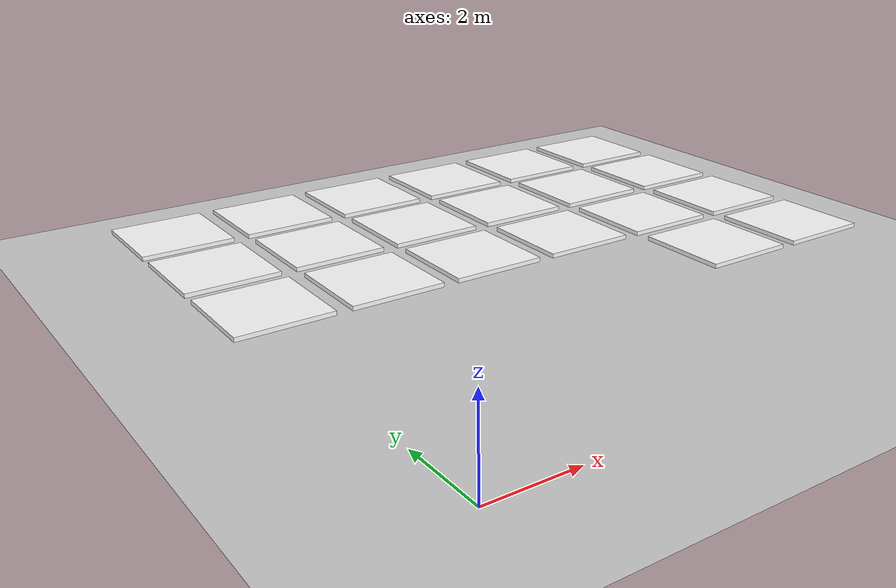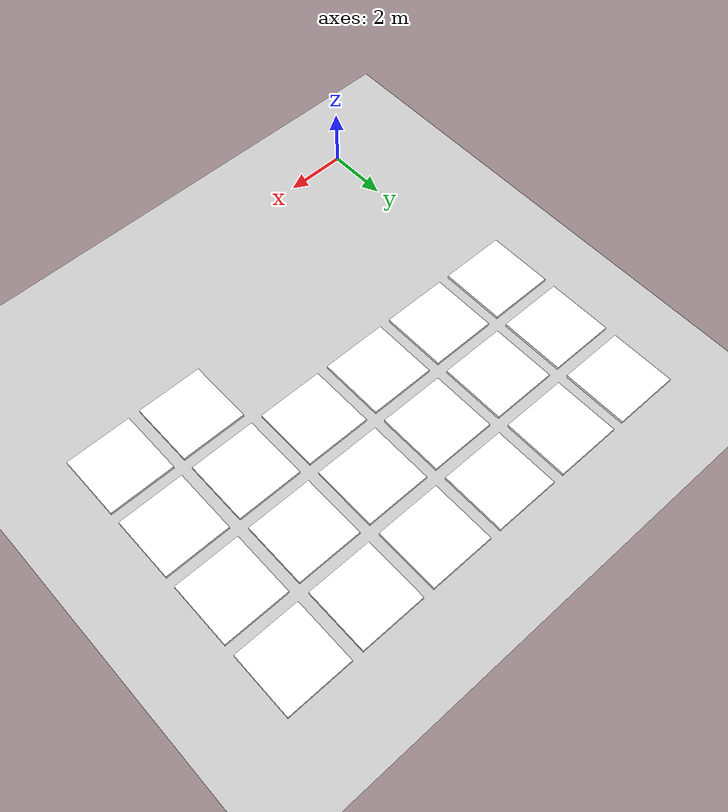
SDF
<sdf version="1.7">
 <world name="default">
  <model name="ground_plane">
   <static>1</static>
   <link name="link">
    <collision name="collision">
     <geometry><plane><normal>0 0 1</normal><size>100 100</size></plane></geometry>
     <surface>
      <contact><collide_bitmask>65535</collide_bitmask></contact>
      <friction><ode><mu>100</mu><mu2>50</mu2></ode></friction>
     </surface>
    </collision>
    <visual name="visual">
     <cast_shadows>0</cast_shadows>
     <geometry><plane><normal>0 0 1</normal><size>100 100</size></plane></geometry>
     <material>
      <script><uri>file://media/materials/scripts/gazebo.material</uri><name>Gazebo/Grey</name></script>
     </material>
    </visual>
   </link>
  </model>
  <model name="top_view_fuel_cluster_7_9">
   <link name="link">
    <inertial>
     <mass>0.489843</mass>
     <inertia>
      <ixx>0.0410659</ixx>
      <ixy>0</ixy>
      <ixz>0</ixz>
      <iyy>0.0410658</iyy>
      <iyz>0</iyz>
      <izz>0.0816405</izz>
     </inertia>
    </inertial>
    <visual name="visual">
     <geometry><box><size>2.14 2.14 0.099999</size></box></geometry>
     <material>
      <script>
       <uri>model://top_view_fuel_cluster/materials/scripts</uri>
       <uri>model://top_view_fuel_cluster/materials/textures</uri>
       <name>snf/Diffuse</name>
      </script>
      <shader type="pixel"><normal_map>__default__</normal_map></shader>
      <ambient>0.3 0.3 0.3 1</ambient>
      <diffuse>1 1 1 1</diffuse>
      <specular>0.01 0.01 0.01 1</specular>
      <emissive>0 0 0 1</emissive>
     </material>
    </visual>
    <collision name="collision">
     <geometry><box><size>2.14 2.14 0.100001</size></box></geometry>
     <surface>
      <friction>
       <ode><mu>1</mu><mu2>1</mu2><fdir1>0 0 0</fdir1><slip1>0</slip1><slip2>0</slip2></ode>
       <torsional>
        <coefficient>1</coefficient>
        <patch_radius>0</patch_radius>
        <surface_radius>0</surface_radius>
        <use_patch_radius>1</use_patch_radius>
        <ode><slip>0</slip></ode>
       </torsional>
      </friction>
      <bounce><restitution_coefficient>0</restitution_coefficient><threshold>1e+06</threshold></bounce>
      <contact>
       <collide_without_contact>0</collide_without_contact>
       <collide_without_contact_bitmask>1</collide_without_contact_bitmask>
       <collide_bitmask>1</collide_bitmask>
       <ode>
        <soft_cfm>0</soft_cfm>
        <soft_erp>0.2</soft_erp>
        <kp>1e+13</kp>
        <kd>1</kd>
        <max_vel>0.01</max_vel>
        <min_depth>0</min_depth>
       </ode>
       <bullet>
        <split_impulse>1</split_impulse>
        <split_impulse_penetration_threshold>-0.01</split_impulse_penetration_threshold>
        <soft_cfm>0</soft_cfm>
        <soft_erp>0.2</soft_erp>
        <kp>1e+13</kp>
        <kd>1</kd>
       </bullet>
      </contact>
     </surface>
    </collision>
   </link>
   <static>0</static>
   <pose>10 5 0.5 0 -0 0</pose>
  </model>
  <model name="top_view_fuel_cluster_7_10">
   <link name="link">
    <inertial>
     <mass>0.489843</mass>
     <inertia>
      <ixx>0.0410659</ixx>
      <ixy>0</ixy>
      <ixz>0</ixz>
      <iyy>0.0410658</iyy>
      <iyz>0</iyz>
      <izz>0.0816405</izz>
     </inertia>
    </inertial>
    <visual name="visual">
     <geometry><box><size>2.14 2.14 0.099999</size></box></geometry>
     <material>
      <script>
       <uri>model://top_view_fuel_cluster/materials/scripts</uri>
       <uri>model://top_view_fuel_cluster/materials/textures</uri>
       <name>snf/Diffuse</name>
      </script>
      <shader type="pixel"><normal_map>__default__</normal_map></shader>
      <ambient>0.3 0.3 0.3 1</ambient>
      <diffuse>1 1 1 1</diffuse>
      <specular>0.01 0.01 0.01 1</specular>
      <emissive>0 0 0 1</emissive>
     </material>
    </visual>
    <collision name="collision">
     <geometry><box><size>2.14 2.14 0.100001</size></box></geometry>
     <surface>
      <friction>
       <ode><mu>1</mu><mu2>1</mu2><fdir1>0 0 0</fdir1><slip1>0</slip1><slip2>0</slip2></ode>
       <torsional>
        <coefficient>1</coefficient>
        <patch_radius>0</patch_radius>
        <surface_radius>0</surface_radius>
        <use_patch_radius>1</use_patch_radius>
        <ode><slip>0</slip></ode>
       </torsional>
      </friction>
      <bounce><restitution_coefficient>0</restitution_coefficient><threshold>1e+06</threshold></bounce>
      <contact>
       <collide_without_contact>0</collide_without_contact>
       <collide_without_contact_bitmask>1</collide_without_contact_bitmask>
       <collide_bitmask>1</collide_bitmask>
       <ode>
        <soft_cfm>0</soft_cfm>
        <soft_erp>0.2</soft_erp>
        <kp>1e+13</kp>
        <kd>1</kd>
        <max_vel>0.01</max_vel>
        <min_depth>0</min_depth>
       </ode>
       <bullet>
        <split_impulse>1</split_impulse>
        <split_impulse_penetration_threshold>-0.01</split_impulse_penetration_threshold>
        <soft_cfm>0</soft_cfm>
        <soft_erp>0.2</soft_erp>
        <kp>1e+13</kp>
        <kd>1</kd>
       </bullet>
      </contact>
     </surface>
    </collision>
   </link>
   <static>0</static>
   <pose>12.5 5 0.5 0 -0 0</pose>
  </model>
  <model name="top_view_fuel_cluster_8_0">
   <link name="link">
    <inertial>
     <mass>0.489843</mass>
     <inertia>
      <ixx>0.0410659</ixx>
      <ixy>0</ixy>
      <ixz>0</ixz>
      <iyy>0.0410658</iyy>
      <iyz>0</iyz>
      <izz>0.0816405</izz>
     </inertia>
    </inertial>
    <visual name="visual">
     <geometry><box><size>2.14 2.14 0.099999</size></box></geometry>
     <material>
      <script>
       <uri>model://top_view_fuel_cluster/materials/scripts</uri>
       <uri>model://top_view_fuel_cluster/materials/textures</uri>
       <name>snf/Diffuse</name>
      </script>
      <shader type="pixel"><normal_map>__default__</normal_map></shader>
      <ambient>0.3 0.3 0.3 1</ambient>
      <diffuse>1 1 1 1</diffuse>
      <specular>0.01 0.01 0.01 1</specular>
      <emissive>0 0 0 1</emissive>
     </material>
    </visual>
    <collision name="collision">
     <geometry><box><size>2.14 2.14 0.100001</size></box></geometry>
     <surface>
      <friction>
       <ode><mu>1</mu><mu2>1</mu2><fdir1>0 0 0</fdir1><slip1>0</slip1><slip2>0</slip2></ode>
       <torsional>
        <coefficient>1</coefficient>
        <patch_radius>0</patch_radius>
        <surface_radius>0</surface_radius>
        <use_patch_radius>1</use_patch_radius>
        <ode><slip>0</slip></ode>
       </torsional>
      </friction>
      <bounce><restitution_coefficient>0</restitution_coefficient><threshold>1e+06</threshold></bounce>
      <contact>
       <collide_without_contact>0</collide_without_contact>
       <collide_without_contact_bitmask>1</collide_without_contact_bitmask>
       <collide_bitmask>1</collide_bitmask>
       <ode>
        <soft_cfm>0</soft_cfm>
        <soft_erp>0.2</soft_erp>
        <kp>1e+13</kp>
        <kd>1</kd>
        <max_vel>0.01</max_vel>
        <min_depth>0</min_depth>
       </ode>
       <bullet>
        <split_impulse>1</split_impulse>
        <split_impulse_penetration_threshold>-0.01</split_impulse_penetration_threshold>
        <soft_cfm>0</soft_cfm>
        <soft_erp>0.2</soft_erp>
        <kp>1e+13</kp>
        <kd>1</kd>
       </bullet>
      </contact>
     </surface>
    </collision>
   </link>
   <static>0</static>
   <pose>0 7.5 0.5 0 0 0</pose>
  </model>
  <model name="top_view_fuel_cluster_8_6">
   <link name="link">
    <inertial>
     <mass>0.489843</mass>
     <inertia>
      <ixx>0.0410659</ixx>
      <ixy>0</ixy>
      <ixz>0</ixz>
      <iyy>0.0410658</iyy>
      <iyz>0</iyz>
      <izz>0.0816405</izz>
     </inertia>
    </inertial>
    <visual name="visual">
     <geometry><box><size>2.14 2.14 0.099999</size></box></geometry>
     <material>
      <script>
       <uri>model://top_view_fuel_cluster/materials/scripts</uri>
       <uri>model://top_view_fuel_cluster/materials/textures</uri>
       <name>snf/Diffuse</name>
      </script>
      <shader type="pixel"><normal_map>__default__</normal_map></shader>
      <ambient>0.3 0.3 0.3 1</ambient>
      <diffuse>1 1 1 1</diffuse>
      <specular>0.01 0.01 0.01 1</specular>
      <emissive>0 0 0 1</emissive>
     </material>
    </visual>
    <collision name="collision">
     <geometry><box><size>2.14 2.14 0.100001</size></box></geometry>
     <surface>
      <friction>
       <ode><mu>1</mu><mu2>1</mu2><fdir1>0 0 0</fdir1><slip1>0</slip1><slip2>0</slip2></ode>
       <torsional>
        <coefficient>1</coefficient>
        <patch_radius>0</patch_radius>
        <surface_radius>0</surface_radius>
        <use_patch_radius>1</use_patch_radius>
        <ode><slip>0</slip></ode>
       </torsional>
      </friction>
      <bounce><restitution_coefficient>0</restitution_coefficient><threshold>1e+06</threshold></bounce>
      <contact>
       <collide_without_contact>0</collide_without_contact>
       <collide_without_contact_bitmask>1</collide_without_contact_bitmask>
       <collide_bitmask>1</collide_bitmask>
       <ode>
        <soft_cfm>0</soft_cfm>
        <soft_erp>0.2</soft_erp>
        <kp>1e+13</kp>
        <kd>1</kd>
        <max_vel>0.01</max_vel>
        <min_depth>0</min_depth>
       </ode>
       <bullet>
        <split_impulse>1</split_impulse>
        <split_impulse_penetration_threshold>-0.01</split_impulse_penetration_threshold>
        <soft_cfm>0</soft_cfm>
        <soft_erp>0.2</soft_erp>
        <kp>1e+13</kp>
        <kd>1</kd>
       </bullet>
      </contact>
     </surface>
    </collision>
   </link>
   <static>0</static>
   <pose>2.5 7.5 0.5 0 -0 0</pose>
  </model>
  <model name="top_view_fuel_cluster_8_7">
   <link name="link">
    <inertial>
     <mass>0.489843</mass>
     <inertia>
      <ixx>0.0410659</ixx>
      <ixy>0</ixy>
      <ixz>0</ixz>
      <iyy>0.0410658</iyy>
      <iyz>0</iyz>
      <izz>0.0816405</izz>
     </inertia>
    </inertial>
    <visual name="visual">
     <geometry><box><size>2.14 2.14 0.099999</size></box></geometry>
     <material>
      <script>
       <uri>model://top_view_fuel_cluster/materials/scripts</uri>
       <uri>model://top_view_fuel_cluster/materials/textures</uri>
       <name>snf/Diffuse</name>
      </script>
      <shader type="pixel"><normal_map>__default__</normal_map></shader>
      <ambient>0.3 0.3 0.3 1</ambient>
      <diffuse>1 1 1 1</diffuse>
      <specular>0.01 0.01 0.01 1</specular>
      <emissive>0 0 0 1</emissive>
     </material>
    </visual>
    <collision name="collision">
     <geometry><box><size>2.14 2.14 0.100001</size></box></geometry>
     <surface>
      <friction>
       <ode><mu>1</mu><mu2>1</mu2><fdir1>0 0 0</fdir1><slip1>0</slip1><slip2>0</slip2></ode>
       <torsional>
        <coefficient>1</coefficient>
        <patch_radius>0</patch_radius>
        <surface_radius>0</surface_radius>
        <use_patch_radius>1</use_patch_radius>
        <ode><slip>0</slip></ode>
       </torsional>
      </friction>
      <bounce><restitution_coefficient>0</restitution_coefficient><threshold>1e+06</threshold></bounce>
      <contact>
       <collide_without_contact>0</collide_without_contact>
       <collide_without_contact_bitmask>1</collide_without_contact_bitmask>
       <collide_bitmask>1</collide_bitmask>
       <ode>
        <soft_cfm>0</soft_cfm>
        <soft_erp>0.2</soft_erp>
        <kp>1e+13</kp>
        <kd>1</kd>
        <max_vel>0.01</max_vel>
        <min_depth>0</min_depth>
       </ode>
       <bullet>
        <split_impulse>1</split_impulse>
        <split_impulse_penetration_threshold>-0.01</split_impulse_penetration_threshold>
        <soft_cfm>0</soft_cfm>
        <soft_erp>0.2</soft_erp>
        <kp>1e+13</kp>
        <kd>1</kd>
       </bullet>
      </contact>
     </surface>
    </collision>
   </link>
   <static>0</static>
   <pose>5 7.5 0.5 0 -0 0</pose>
  </model>
  <model name="top_view_fuel_cluster_8_8">
   <link name="link">
    <inertial>
     <mass>0.489843</mass>
     <inertia>
      <ixx>0.0410659</ixx>
      <ixy>0</ixy>
      <ixz>0</ixz>
      <iyy>0.0410658</iyy>
      <iyz>0</iyz>
      <izz>0.0816405</izz>
     </inertia>
    </inertial>
    <visual name="visual">
     <geometry><box><size>2.14 2.14 0.099999</size></box></geometry>
     <material>
      <script>
       <uri>model://top_view_fuel_cluster/materials/scripts</uri>
       <uri>model://top_view_fuel_cluster/materials/textures</uri>
       <name>snf/Diffuse</name>
      </script>
      <shader type="pixel"><normal_map>__default__</normal_map></shader>
      <ambient>0.3 0.3 0.3 1</ambient>
      <diffuse>1 1 1 1</diffuse>
      <specular>0.01 0.01 0.01 1</specular>
      <emissive>0 0 0 1</emissive>
     </material>
    </visual>
    <collision name="collision">
     <geometry><box><size>2.14 2.14 0.100001</size></box></geometry>
     <surface>
      <friction>
       <ode><mu>1</mu><mu2>1</mu2><fdir1>0 0 0</fdir1><slip1>0</slip1><slip2>0</slip2></ode>
       <torsional>
        <coefficient>1</coefficient>
        <patch_radius>0</patch_radius>
        <surface_radius>0</surface_radius>
        <use_patch_radius>1</use_patch_radius>
        <ode><slip>0</slip></ode>
       </torsional>
      </friction>
      <bounce><restitution_coefficient>0</restitution_coefficient><threshold>1e+06</threshold></bounce>
      <contact>
       <collide_without_contact>0</collide_without_contact>
       <collide_without_contact_bitmask>1</collide_without_contact_bitmask>
       <collide_bitmask>1</collide_bitmask>
       <ode>
        <soft_cfm>0</soft_cfm>
        <soft_erp>0.2</soft_erp>
        <kp>1e+13</kp>
        <kd>1</kd>
        <max_vel>0.01</max_vel>
        <min_depth>0</min_depth>
       </ode>
       <bullet>
        <split_impulse>1</split_impulse>
        <split_impulse_penetration_threshold>-0.01</split_impulse_penetration_threshold>
        <soft_cfm>0</soft_cfm>
        <soft_erp>0.2</soft_erp>
        <kp>1e+13</kp>
        <kd>1</kd>
       </bullet>
      </contact>
     </surface>
    </collision>
   </link>
   <static>0</static>
   <pose>7.5 7.5 0.5 0 -0 0</pose>
  </model>
  <model name="top_view_fuel_cluster_8_9">
   <link name="link">
    <inertial>
     <mass>0.489843</mass>
     <inertia>
      <ixx>0.0410659</ixx>
      <ixy>0</ixy>
      <ixz>0</ixz>
      <iyy>0.0410658</iyy>
      <iyz>0</iyz>
      <izz>0.0816405</izz>
     </inertia>
    </inertial>
    <visual name="visual">
     <geometry><box><size>2.14 2.14 0.099999</size></box></geometry>
     <material>
      <script>
       <uri>model://top_view_fuel_cluster/materials/scripts</uri>
       <uri>model://top_view_fuel_cluster/materials/textures</uri>
       <name>snf/Diffuse</name>
      </script>
      <shader type="pixel"><normal_map>__default__</normal_map></shader>
      <ambient>0.3 0.3 0.3 1</ambient>
      <diffuse>1 1 1 1</diffuse>
      <specular>0.01 0.01 0.01 1</specular>
      <emissive>0 0 0 1</emissive>
     </material>
    </visual>
    <collision name="collision">
     <geometry><box><size>2.14 2.14 0.100001</size></box></geometry>
     <surface>
      <friction>
       <ode><mu>1</mu><mu2>1</mu2><fdir1>0 0 0</fdir1><slip1>0</slip1><slip2>0</slip2></ode>
       <torsional>
        <coefficient>1</coefficient>
        <patch_radius>0</patch_radius>
        <surface_radius>0</surface_radius>
        <use_patch_radius>1</use_patch_radius>
        <ode><slip>0</slip></ode>
       </torsional>
      </friction>
      <bounce><restitution_coefficient>0</restitution_coefficient><threshold>1e+06</threshold></bounce>
      <contact>
       <collide_without_contact>0</collide_without_contact>
       <collide_without_contact_bitmask>1</collide_without_contact_bitmask>
       <collide_bitmask>1</collide_bitmask>
       <ode>
        <soft_cfm>0</soft_cfm>
        <soft_erp>0.2</soft_erp>
        <kp>1e+13</kp>
        <kd>1</kd>
        <max_vel>0.01</max_vel>
        <min_depth>0</min_depth>
       </ode>
       <bullet>
        <split_impulse>1</split_impulse>
        <split_impulse_penetration_threshold>-0.01</split_impulse_penetration_threshold>
        <soft_cfm>0</soft_cfm>
        <soft_erp>0.2</soft_erp>
        <kp>1e+13</kp>
        <kd>1</kd>
       </bullet>
      </contact>
     </surface>
    </collision>
   </link>
   <static>0</static>
   <pose>10 7.5 0.5 0 -0 0</pose>
  </model>
  <model name="top_view_fuel_cluster_8_10">
   <link name="link">
    <inertial>
     <mass>0.489843</mass>
     <inertia>
      <ixx>0.0410659</ixx>
      <ixy>0</ixy>
      <ixz>0</ixz>
      <iyy>0.0410658</iyy>
      <iyz>0</iyz>
      <izz>0.0816405</izz>
     </inertia>
    </inertial>
    <visual name="visual">
     <geometry><box><size>2.14 2.14 0.099999</size></box></geometry>
     <material>
      <script>
       <uri>model://top_view_fuel_cluster/materials/scripts</uri>
       <uri>model://top_view_fuel_cluster/materials/textures</uri>
       <name>snf/Diffuse</name>
      </script>
      <shader type="pixel"><normal_map>__default__</normal_map></shader>
      <ambient>0.3 0.3 0.3 1</ambient>
      <diffuse>1 1 1 1</diffuse>
      <specular>0.01 0.01 0.01 1</specular>
      <emissive>0 0 0 1</emissive>
     </material>
    </visual>
    <collision name="collision">
     <geometry><box><size>2.14 2.14 0.100001</size></box></geometry>
     <surface>
      <friction>
       <ode><mu>1</mu><mu2>1</mu2><fdir1>0 0 0</fdir1><slip1>0</slip1><slip2>0</slip2></ode>
       <torsional>
        <coefficient>1</coefficient>
        <patch_radius>0</patch_radius>
        <surface_radius>0</surface_radius>
        <use_patch_radius>1</use_patch_radius>
        <ode><slip>0</slip></ode>
       </torsional>
      </friction>
      <bounce><restitution_coefficient>0</restitution_coefficient><threshold>1e+06</threshold></bounce>
      <contact>
       <collide_without_contact>0</collide_without_contact>
       <collide_without_contact_bitmask>1</collide_without_contact_bitmask>
       <collide_bitmask>1</collide_bitmask>
       <ode>
        <soft_cfm>0</soft_cfm>
        <soft_erp>0.2</soft_erp>
        <kp>1e+13</kp>
        <kd>1</kd>
        <max_vel>0.01</max_vel>
        <min_depth>0</min_depth>
       </ode>
       <bullet>
        <split_impulse>1</split_impulse>
        <split_impulse_penetration_threshold>-0.01</split_impulse_penetration_threshold>
        <soft_cfm>0</soft_cfm>
        <soft_erp>0.2</soft_erp>
        <kp>1e+13</kp>
        <kd>1</kd>
       </bullet>
      </contact>
     </surface>
    </collision>
   </link>
   <static>0</static>
   <pose>12.5 7.5 0.5 0 -0 0</pose>
  </model>
  <model name="top_view_fuel_cluster_9_0">
   <link name="link">
    <inertial>
     <mass>0.489843</mass>
     <inertia>
      <ixx>0.0410659</ixx>
      <ixy>0</ixy>
      <ixz>0</ixz>
      <iyy>0.0410658</iyy>
      <iyz>0</iyz>
      <izz>0.0816405</izz>
     </inertia>
    </inertial>
    <visual name="visual">
     <geometry><box><size>2.14 2.14 0.099999</size></box></geometry>
     <material>
      <script>
       <uri>model://top_view_fuel_cluster/materials/scripts</uri>
       <uri>model://top_view_fuel_cluster/materials/textures</uri>
       <name>snf/Diffuse</name>
      </script>
      <shader type="pixel"><normal_map>__default__</normal_map></shader>
      <ambient>0.3 0.3 0.3 1</ambient>
      <diffuse>1 1 1 1</diffuse>
      <specular>0.01 0.01 0.01 1</specular>
      <emissive>0 0 0 1</emissive>
     </material>
    </visual>
    <collision name="collision">
     <geometry><box><size>2.14 2.14 0.100001</size></box></geometry>
     <surface>
      <friction>
       <ode><mu>1</mu><mu2>1</mu2><fdir1>0 0 0</fdir1><slip1>0</slip1><slip2>0</slip2></ode>
       <torsional>
        <coefficient>1</coefficient>
        <patch_radius>0</patch_radius>
        <surface_radius>0</surface_radius>
        <use_patch_radius>1</use_patch_radius>
        <ode><slip>0</slip></ode>
       </torsional>
      </friction>
      <bounce><restitution_coefficient>0</restitution_coefficient><threshold>1e+06</threshold></bounce>
      <contact>
       <collide_without_contact>0</collide_without_contact>
       <collide_without_contact_bitmask>1</collide_without_contact_bitmask>
       <collide_bitmask>1</collide_bitmask>
       <ode>
        <soft_cfm>0</soft_cfm>
        <soft_erp>0.2</soft_erp>
        <kp>1e+13</kp>
        <kd>1</kd>
        <max_vel>0.01</max_vel>
        <min_depth>0</min_depth>
       </ode>
       <bullet>
        <split_impulse>1</split_impulse>
        <split_impulse_penetration_threshold>-0.01</split_impulse_penetration_threshold>
        <soft_cfm>0</soft_cfm>
        <soft_erp>0.2</soft_erp>
        <kp>1e+13</kp>
        <kd>1</kd>
       </bullet>
      </contact>
     </surface>
    </collision>
   </link>
   <static>0</static>
   <pose>0 10.0 0.5 0 0 0</pose>
  </model>
  <model name="top_view_fuel_cluster_9_6">
   <link name="link">
    <inertial>
     <mass>0.489843</mass>
     <inertia>
      <ixx>0.0410659</ixx>
      <ixy>0</ixy>
      <ixz>0</ixz>
      <iyy>0.0410658</iyy>
      <iyz>0</iyz>
      <izz>0.0816405</izz>
     </inertia>
    </inertial>
    <visual name="visual">
     <geometry><box><size>2.14 2.14 0.099999</size></box></geometry>
     <material>
      <script>
       <uri>model://top_view_fuel_cluster/materials/scripts</uri>
       <uri>model://top_view_fuel_cluster/materials/textures</uri>
       <name>snf/Diffuse</name>
      </script>
      <shader type="pixel"><normal_map>__default__</normal_map></shader>
      <ambient>0.3 0.3 0.3 1</ambient>
      <diffuse>1 1 1 1</diffuse>
      <specular>0.01 0.01 0.01 1</specular>
      <emissive>0 0 0 1</emissive>
     </material>
    </visual>
    <collision name="collision">
     <geometry><box><size>2.14 2.14 0.100001</size></box></geometry>
     <surface>
      <friction>
       <ode><mu>1</mu><mu2>1</mu2><fdir1>0 0 0</fdir1><slip1>0</slip1><slip2>0</slip2></ode>
       <torsional>
        <coefficient>1</coefficient>
        <patch_radius>0</patch_radius>
        <surface_radius>0</surface_radius>
        <use_patch_radius>1</use_patch_radius>
        <ode><slip>0</slip></ode>
       </torsional>
      </friction>
      <bounce><restitution_coefficient>0</restitution_coefficient><threshold>1e+06</threshold></bounce>
      <contact>
       <collide_without_contact>0</collide_without_contact>
       <collide_without_contact_bitmask>1</collide_without_contact_bitmask>
       <collide_bitmask>1</collide_bitmask>
       <ode>
        <soft_cfm>0</soft_cfm>
        <soft_erp>0.2</soft_erp>
        <kp>1e+13</kp>
        <kd>1</kd>
        <max_vel>0.01</max_vel>
        <min_depth>0</min_depth>
       </ode>
       <bullet>
        <split_impulse>1</split_impulse>
        <split_impulse_penetration_threshold>-0.01</split_impulse_penetration_threshold>
        <soft_cfm>0</soft_cfm>
        <soft_erp>0.2</soft_erp>
        <kp>1e+13</kp>
        <kd>1</kd>
       </bullet>
      </contact>
     </surface>
    </collision>
   </link>
   <static>0</static>
   <pose>2.5 10.0 0.5 0 -0 0</pose>
  </model>
  <model name="top_view_fuel_cluster_9_7">
   <link name="link">
    <inertial>
     <mass>0.489843</mass>
     <inertia>
      <ixx>0.0410659</ixx>
      <ixy>0</ixy>
      <ixz>0</ixz>
      <iyy>0.0410658</iyy>
      <iyz>0</iyz>
      <izz>0.0816405</izz>
     </inertia>
    </inertial>
    <visual name="visual">
     <geometry><box><size>2.14 2.14 0.099999</size></box></geometry>
     <material>
      <script>
       <uri>model://top_view_fuel_cluster/materials/scripts</uri>
       <uri>model://top_view_fuel_cluster/materials/textures</uri>
       <name>snf/Diffuse</name>
      </script>
      <shader type="pixel"><normal_map>__default__</normal_map></shader>
      <ambient>0.3 0.3 0.3 1</ambient>
      <diffuse>1 1 1 1</diffuse>
      <specular>0.01 0.01 0.01 1</specular>
      <emissive>0 0 0 1</emissive>
     </material>
    </visual>
    <collision name="collision">
     <geometry><box><size>2.14 2.14 0.100001</size></box></geometry>
     <surface>
      <friction>
       <ode><mu>1</mu><mu2>1</mu2><fdir1>0 0 0</fdir1><slip1>0</slip1><slip2>0</slip2></ode>
       <torsional>
        <coefficient>1</coefficient>
        <patch_radius>0</patch_radius>
        <surface_radius>0</surface_radius>
        <use_patch_radius>1</use_patch_radius>
        <ode><slip>0</slip></ode>
       </torsional>
      </friction>
      <bounce><restitution_coefficient>0</restitution_coefficient><threshold>1e+06</threshold></bounce>
      <contact>
       <collide_without_contact>0</collide_without_contact>
       <collide_without_contact_bitmask>1</collide_without_contact_bitmask>
       <collide_bitmask>1</collide_bitmask>
       <ode>
        <soft_cfm>0</soft_cfm>
        <soft_erp>0.2</soft_erp>
        <kp>1e+13</kp>
        <kd>1</kd>
        <max_vel>0.01</max_vel>
        <min_depth>0</min_depth>
       </ode>
       <bullet>
        <split_impulse>1</split_impulse>
        <split_impulse_penetration_threshold>-0.01</split_impulse_penetration_threshold>
        <soft_cfm>0</soft_cfm>
        <soft_erp>0.2</soft_erp>
        <kp>1e+13</kp>
        <kd>1</kd>
       </bullet>
      </contact>
     </surface>
    </collision>
   </link>
   <static>0</static>
   <pose>5 10.0 0.5 0 -0 0</pose>
  </model>
  <model name="top_view_fuel_cluster_9_8">
   <link name="link">
    <inertial>
     <mass>0.489843</mass>
     <inertia>
      <ixx>0.0410659</ixx>
      <ixy>0</ixy>
      <ixz>0</ixz>
      <iyy>0.0410658</iyy>
      <iyz>0</iyz>
      <izz>0.0816405</izz>
     </inertia>
    </inertial>
    <visual name="visual">
     <geometry><box><size>2.14 2.14 0.099999</size></box></geometry>
     <material>
      <script>
       <uri>model://top_view_fuel_cluster/materials/scripts</uri>
       <uri>model://top_view_fuel_cluster/materials/textures</uri>
       <name>snf/Diffuse</name>
      </script>
      <shader type="pixel"><normal_map>__default__</normal_map></shader>
      <ambient>0.3 0.3 0.3 1</ambient>
      <diffuse>1 1 1 1</diffuse>
      <specular>0.01 0.01 0.01 1</specular>
      <emissive>0 0 0 1</emissive>
     </material>
    </visual>
    <collision name="collision">
     <geometry><box><size>2.14 2.14 0.100001</size></box></geometry>
     <surface>
      <friction>
       <ode><mu>1</mu><mu2>1</mu2><fdir1>0 0 0</fdir1><slip1>0</slip1><slip2>0</slip2></ode>
       <torsional>
        <coefficient>1</coefficient>
        <patch_radius>0</patch_radius>
        <surface_radius>0</surface_radius>
        <use_patch_radius>1</use_patch_radius>
        <ode><slip>0</slip></ode>
       </torsional>
      </friction>
      <bounce><restitution_coefficient>0</restitution_coefficient><threshold>1e+06</threshold></bounce>
      <contact>
       <collide_without_contact>0</collide_without_contact>
       <collide_without_contact_bitmask>1</collide_without_contact_bitmask>
       <collide_bitmask>1</collide_bitmask>
       <ode>
        <soft_cfm>0</soft_cfm>
        <soft_erp>0.2</soft_erp>
        <kp>1e+13</kp>
        <kd>1</kd>
        <max_vel>0.01</max_vel>
        <min_depth>0</min_depth>
       </ode>
       <bullet>
        <split_impulse>1</split_impulse>
        <split_impulse_penetration_threshold>-0.01</split_impulse_penetration_threshold>
        <soft_cfm>0</soft_cfm>
        <soft_erp>0.2</soft_erp>
        <kp>1e+13</kp>
        <kd>1</kd>
       </bullet>
      </contact>
     </surface>
    </collision>
   </link>
   <static>0</static>
   <pose>7.5 10.0 0.5 0 -0 0</pose>
  </model>
  <model name="top_view_fuel_cluster_9_9">
   <link name="link">
    <inertial>
     <mass>0.489843</mass>
     <inertia>
      <ixx>0.0410659</ixx>
      <ixy>0</ixy>
      <ixz>0</ixz>
      <iyy>0.0410658</iyy>
      <iyz>0</iyz>
      <izz>0.0816405</izz>
     </inertia>
    </inertial>
    <visual name="visual">
     <geometry><box><size>2.14 2.14 0.099999</size></box></geometry>
     <material>
      <script>
       <uri>model://top_view_fuel_cluster/materials/scripts</uri>
       <uri>model://top_view_fuel_cluster/materials/textures</uri>
       <name>snf/Diffuse</name>
      </script>
      <shader type="pixel"><normal_map>__default__</normal_map></shader>
      <ambient>0.3 0.3 0.3 1</ambient>
      <diffuse>1 1 1 1</diffuse>
      <specular>0.01 0.01 0.01 1</specular>
      <emissive>0 0 0 1</emissive>
     </material>
    </visual>
    <collision name="collision">
     <geometry><box><size>2.14 2.14 0.100001</size></box></geometry>
     <surface>
      <friction>
       <ode><mu>1</mu><mu2>1</mu2><fdir1>0 0 0</fdir1><slip1>0</slip1><slip2>0</slip2></ode>
       <torsional>
        <coefficient>1</coefficient>
        <patch_radius>0</patch_radius>
        <surface_radius>0</surface_radius>
        <use_patch_radius>1</use_patch_radius>
        <ode><slip>0</slip></ode>
       </torsional>
      </friction>
      <bounce><restitution_coefficient>0</restitution_coefficient><threshold>1e+06</threshold></bounce>
      <contact>
       <collide_without_contact>0</collide_without_contact>
       <collide_without_contact_bitmask>1</collide_without_contact_bitmask>
       <collide_bitmask>1</collide_bitmask>
       <ode>
        <soft_cfm>0</soft_cfm>
        <soft_erp>0.2</soft_erp>
        <kp>1e+13</kp>
        <kd>1</kd>
        <max_vel>0.01</max_vel>
        <min_depth>0</min_depth>
       </ode>
       <bullet>
        <split_impulse>1</split_impulse>
        <split_impulse_penetration_threshold>-0.01</split_impulse_penetration_threshold>
        <soft_cfm>0</soft_cfm>
        <soft_erp>0.2</soft_erp>
        <kp>1e+13</kp>
        <kd>1</kd>
       </bullet>
      </contact>
     </surface>
    </collision>
   </link>
   <static>0</static>
   <pose>10 10 0.5 0 -0 0</pose>
  </model>
  <model name="top_view_fuel_cluster_9_10">
   <link name="link">
    <inertial>
     <mass>0.489843</mass>
     <inertia>
      <ixx>0.0410659</ixx>
      <ixy>0</ixy>
      <ixz>0</ixz>
      <iyy>0.0410658</iyy>
      <iyz>0</iyz>
      <izz>0.0816405</izz>
     </inertia>
    </inertial>
    <visual name="visual">
     <geometry><box><size>2.14 2.14 0.099999</size></box></geometry>
     <material>
      <script>
       <uri>model://top_view_fuel_cluster/materials/scripts</uri>
       <uri>model://top_view_fuel_cluster/materials/textures</uri>
       <name>snf/Diffuse</name>
      </script>
      <shader type="pixel"><normal_map>__default__</normal_map></shader>
      <ambient>0.3 0.3 0.3 1</ambient>
      <diffuse>1 1 1 1</diffuse>
      <specular>0.01 0.01 0.01 1</specular>
      <emissive>0 0 0 1</emissive>
     </material>
    </visual>
    <collision name="collision">
     <geometry><box><size>2.14 2.14 0.100001</size></box></geometry>
     <surface>
      <friction>
       <ode><mu>1</mu><mu2>1</mu2><fdir1>0 0 0</fdir1><slip1>0</slip1><slip2>0</slip2></ode>
       <torsional>
        <coefficient>1</coefficient>
        <patch_radius>0</patch_radius>
        <surface_radius>0</surface_radius>
        <use_patch_radius>1</use_patch_radius>
        <ode><slip>0</slip></ode>
       </torsional>
      </friction>
      <bounce><restitution_coefficient>0</restitution_coefficient><threshold>1e+06</threshold></bounce>
      <contact>
       <collide_without_contact>0</collide_without_contact>
       <collide_without_contact_bitmask>1</collide_without_contact_bitmask>
       <collide_bitmask>1</collide_bitmask>
       <ode>
        <soft_cfm>0</soft_cfm>
        <soft_erp>0.2</soft_erp>
        <kp>1e+13</kp>
        <kd>1</kd>
        <max_vel>0.01</max_vel>
        <min_depth>0</min_depth>
       </ode>
       <bullet>
        <split_impulse>1</split_impulse>
        <split_impulse_penetration_threshold>-0.01</split_impulse_penetration_threshold>
        <soft_cfm>0</soft_cfm>
        <soft_erp>0.2</soft_erp>
        <kp>1e+13</kp>
        <kd>1</kd>
       </bullet>
      </contact>
     </surface>
    </collision>
   </link>
   <static>0</static>
   <pose>12.5 10.0 0.5 0 -0 0</pose>
  </model>
  <model name="top_view_fuel_cluster_10_0">
   <link name="link">
    <inertial>
     <mass>0.489843</mass>
     <inertia>
      <ixx>0.0410659</ixx>
      <ixy>0</ixy>
      <ixz>0</ixz>
      <iyy>0.0410658</iyy>
      <iyz>0</iyz>
      <izz>0.0816405</izz>
     </inertia>
    </inertial>
    <visual name="visual">
     <geometry><box><size>2.14 2.14 0.099999</size></box></geometry>
     <material>
      <script>
       <uri>model://top_view_fuel_cluster/materials/scripts</uri>
       <uri>model://top_view_fuel_cluster/materials/textures</uri>
       <name>snf/Diffuse</name>
      </script>
      <shader type="pixel"><normal_map>__default__</normal_map></shader>
      <ambient>0.3 0.3 0.3 1</ambient>
      <diffuse>1 1 1 1</diffuse>
      <specular>0.01 0.01 0.01 1</specular>
      <emissive>0 0 0 1</emissive>
     </material>
    </visual>
    <collision name="collision">
     <geometry><box><size>2.14 2.14 0.100001</size></box></geometry>
     <surface>
      <friction>
       <ode><mu>1</mu><mu2>1</mu2><fdir1>0 0 0</fdir1><slip1>0</slip1><slip2>0</slip2></ode>
       <torsional>
        <coefficient>1</coefficient>
        <patch_radius>0</patch_radius>
        <surface_radius>0</surface_radius>
        <use_patch_radius>1</use_patch_radius>
        <ode><slip>0</slip></ode>
       </torsional>
      </friction>
      <bounce><restitution_coefficient>0</restitution_coefficient><threshold>1e+06</threshold></bounce>
      <contact>
       <collide_without_contact>0</collide_without_contact>
       <collide_without_contact_bitmask>1</collide_without_contact_bitmask>
       <collide_bitmask>1</collide_bitmask>
       <ode>
        <soft_cfm>0</soft_cfm>
        <soft_erp>0.2</soft_erp>
        <kp>1e+13</kp>
        <kd>1</kd>
        <max_vel>0.01</max_vel>
        <min_depth>0</min_depth>
       </ode>
       <bullet>
        <split_impulse>1</split_impulse>
        <split_impulse_penetration_threshold>-0.01</split_impulse_penetration_threshold>
        <soft_cfm>0</soft_cfm>
        <soft_erp>0.2</soft_erp>
        <kp>1e+13</kp>
        <kd>1</kd>
       </bullet>
      </contact>
     </surface>
    </collision>
   </link>
   <static>0</static>
   <pose>0 12.5 0.5 0 0 0</pose>
  </model>
  <model name="top_view_fuel_cluster_10_6">
   <link name="link">
    <inertial>
     <mass>0.489843</mass>
     <inertia>
      <ixx>0.0410659</ixx>
      <ixy>0</ixy>
      <ixz>0</ixz>
      <iyy>0.0410658</iyy>
      <iyz>0</iyz>
      <izz>0.0816405</izz>
     </inertia>
    </inertial>
    <visual name="visual">
     <geometry><box><size>2.14 2.14 0.099999</size></box></geometry>
     <material>
      <script>
       <uri>model://top_view_fuel_cluster/materials/scripts</uri>
       <uri>model://top_view_fuel_cluster/materials/textures</uri>
       <name>snf/Diffuse</name>
      </script>
      <shader type="pixel"><normal_map>__default__</normal_map></shader>
      <ambient>0.3 0.3 0.3 1</ambient>
      <diffuse>1 1 1 1</diffuse>
      <specular>0.01 0.01 0.01 1</specular>
      <emissive>0 0 0 1</emissive>
     </material>
    </visual>
    <collision name="collision">
     <geometry><box><size>2.14 2.14 0.100001</size></box></geometry>
     <surface>
      <friction>
       <ode><mu>1</mu><mu2>1</mu2><fdir1>0 0 0</fdir1><slip1>0</slip1><slip2>0</slip2></ode>
       <torsional>
        <coefficient>1</coefficient>
        <patch_radius>0</patch_radius>
        <surface_radius>0</surface_radius>
        <use_patch_radius>1</use_patch_radius>
        <ode><slip>0</slip></ode>
       </torsional>
      </friction>
      <bounce><restitution_coefficient>0</restitution_coefficient><threshold>1e+06</threshold></bounce>
      <contact>
       <collide_without_contact>0</collide_without_contact>
       <collide_without_contact_bitmask>1</collide_without_contact_bitmask>
       <collide_bitmask>1</collide_bitmask>
       <ode>
        <soft_cfm>0</soft_cfm>
        <soft_erp>0.2</soft_erp>
        <kp>1e+13</kp>
        <kd>1</kd>
        <max_vel>0.01</max_vel>
        <min_depth>0</min_depth>
       </ode>
       <bullet>
        <split_impulse>1</split_impulse>
        <split_impulse_penetration_threshold>-0.01</split_impulse_penetration_threshold>
        <soft_cfm>0</soft_cfm>
        <soft_erp>0.2</soft_erp>
        <kp>1e+13</kp>
        <kd>1</kd>
       </bullet>
      </contact>
     </surface>
    </collision>
   </link>
   <static>0</static>
   <pose>2.5 12.5 0.5 0 -0 0</pose>
  </model>
  <model name="top_view_fuel_cluster_10_7">
   <link name="link">
    <inertial>
     <mass>0.489843</mass>
     <inertia>
      <ixx>0.0410659</ixx>
      <ixy>0</ixy>
      <ixz>0</ixz>
      <iyy>0.0410658</iyy>
      <iyz>0</iyz>
      <izz>0.0816405</izz>
     </inertia>
    </inertial>
    <visual name="visual">
     <geometry><box><size>2.14 2.14 0.099999</size></box></geometry>
     <material>
      <script>
       <uri>model://top_view_fuel_cluster/materials/scripts</uri>
       <uri>model://top_view_fuel_cluster/materials/textures</uri>
       <name>snf/Diffuse</name>
      </script>
      <shader type="pixel"><normal_map>__default__</normal_map></shader>
      <ambient>0.3 0.3 0.3 1</ambient>
      <diffuse>1 1 1 1</diffuse>
      <specular>0.01 0.01 0.01 1</specular>
      <emissive>0 0 0 1</emissive>
     </material>
    </visual>
    <collision name="collision">
     <geometry><box><size>2.14 2.14 0.100001</size></box></geometry>
     <surface>
      <friction>
       <ode><mu>1</mu><mu2>1</mu2><fdir1>0 0 0</fdir1><slip1>0</slip1><slip2>0</slip2></ode>
       <torsional>
        <coefficient>1</coefficient>
        <patch_radius>0</patch_radius>
        <surface_radius>0</surface_radius>
        <use_patch_radius>1</use_patch_radius>
        <ode><slip>0</slip></ode>
       </torsional>
      </friction>
      <bounce><restitution_coefficient>0</restitution_coefficient><threshold>1e+06</threshold></bounce>
      <contact>
       <collide_without_contact>0</collide_without_contact>
       <collide_without_contact_bitmask>1</collide_without_contact_bitmask>
       <collide_bitmask>1</collide_bitmask>
       <ode>
        <soft_cfm>0</soft_cfm>
        <soft_erp>0.2</soft_erp>
        <kp>1e+13</kp>
        <kd>1</kd>
        <max_vel>0.01</max_vel>
        <min_depth>0</min_depth>
       </ode>
       <bullet>
        <split_impulse>1</split_impulse>
        <split_impulse_penetration_threshold>-0.01</split_impulse_penetration_threshold>
        <soft_cfm>0</soft_cfm>
        <soft_erp>0.2</soft_erp>
        <kp>1e+13</kp>
        <kd>1</kd>
       </bullet>
      </contact>
     </surface>
    </collision>
   </link>
   <static>0</static>
   <pose>5 12.5 0.5 0 -0 0</pose>
  </model>
  <model name="top_view_fuel_cluster_10_8">
   <link name="link">
    <inertial>
     <mass>0.489843</mass>
     <inertia>
      <ixx>0.0410659</ixx>
      <ixy>0</ixy>
      <ixz>0</ixz>
      <iyy>0.0410658</iyy>
      <iyz>0</iyz>
      <izz>0.0816405</izz>
     </inertia>
    </inertial>
    <visual name="visual">
     <geometry><box><size>2.14 2.14 0.099999</size></box></geometry>
     <material>
      <script>
       <uri>model://top_view_fuel_cluster/materials/scripts</uri>
       <uri>model://top_view_fuel_cluster/materials/textures</uri>
       <name>snf/Diffuse</name>
      </script>
      <shader type="pixel"><normal_map>__default__</normal_map></shader>
      <ambient>0.3 0.3 0.3 1</ambient>
      <diffuse>1 1 1 1</diffuse>
      <specular>0.01 0.01 0.01 1</specular>
      <emissive>0 0 0 1</emissive>
     </material>
    </visual>
    <collision name="collision">
     <geometry><box><size>2.14 2.14 0.100001</size></box></geometry>
     <surface>
      <friction>
       <ode><mu>1</mu><mu2>1</mu2><fdir1>0 0 0</fdir1><slip1>0</slip1><slip2>0</slip2></ode>
       <torsional>
        <coefficient>1</coefficient>
        <patch_radius>0</patch_radius>
        <surface_radius>0</surface_radius>
        <use_patch_radius>1</use_patch_radius>
        <ode><slip>0</slip></ode>
       </torsional>
      </friction>
      <bounce><restitution_coefficient>0</restitution_coefficient><threshold>1e+06</threshold></bounce>
      <contact>
       <collide_without_contact>0</collide_without_contact>
       <collide_without_contact_bitmask>1</collide_without_contact_bitmask>
       <collide_bitmask>1</collide_bitmask>
       <ode>
        <soft_cfm>0</soft_cfm>
        <soft_erp>0.2</soft_erp>
        <kp>1e+13</kp>
        <kd>1</kd>
        <max_vel>0.01</max_vel>
        <min_depth>0</min_depth>
       </ode>
       <bullet>
        <split_impulse>1</split_impulse>
        <split_impulse_penetration_threshold>-0.01</split_impulse_penetration_threshold>
        <soft_cfm>0</soft_cfm>
        <soft_erp>0.2</soft_erp>
        <kp>1e+13</kp>
        <kd>1</kd>
       </bullet>
      </contact>
     </surface>
    </collision>
   </link>
   <static>0</static>
   <pose>7.5 12.5 0.5 0 -0 0</pose>
  </model>
  <model name="top_view_fuel_cluster_10_9">
   <link name="link">
    <inertial>
     <mass>0.489843</mass>
     <inertia>
      <ixx>0.0410659</ixx>
      <ixy>0</ixy>
      <ixz>0</ixz>
      <iyy>0.0410658</iyy>
      <iyz>0</iyz>
      <izz>0.0816405</izz>
     </inertia>
    </inertial>
    <visual name="visual">
     <geometry><box><size>2.14 2.14 0.099999</size></box></geometry>
     <material>
      <script>
       <uri>model://top_view_fuel_cluster/materials/scripts</uri>
       <uri>model://top_view_fuel_cluster/materials/textures</uri>
       <name>snf/Diffuse</name>
      </script>
      <shader type="pixel"><normal_map>__default__</normal_map></shader>
      <ambient>0.3 0.3 0.3 1</ambient>
      <diffuse>1 1 1 1</diffuse>
      <specular>0.01 0.01 0.01 1</specular>
      <emissive>0 0 0 1</emissive>
     </material>
    </visual>
    <collision name="collision">
     <geometry><box><size>2.14 2.14 0.100001</size></box></geometry>
     <surface>
      <friction>
       <ode><mu>1</mu><mu2>1</mu2><fdir1>0 0 0</fdir1><slip1>0</slip1><slip2>0</slip2></ode>
       <torsional>
        <coefficient>1</coefficient>
        <patch_radius>0</patch_radius>
        <surface_radius>0</surface_radius>
        <use_patch_radius>1</use_patch_radius>
        <ode><slip>0</slip></ode>
       </torsional>
      </friction>
      <bounce><restitution_coefficient>0</restitution_coefficient><threshold>1e+06</threshold></bounce>
      <contact>
       <collide_without_contact>0</collide_without_contact>
       <collide_without_contact_bitmask>1</collide_without_contact_bitmask>
       <collide_bitmask>1</collide_bitmask>
       <ode>
        <soft_cfm>0</soft_cfm>
        <soft_erp>0.2</soft_erp>
        <kp>1e+13</kp>
        <kd>1</kd>
        <max_vel>0.01</max_vel>
        <min_depth>0</min_depth>
       </ode>
       <bullet>
        <split_impulse>1</split_impulse>
        <split_impulse_penetration_threshold>-0.01</split_impulse_penetration_threshold>
        <soft_cfm>0</soft_cfm>
        <soft_erp>0.2</soft_erp>
        <kp>1e+13</kp>
        <kd>1</kd>
       </bullet>
      </contact>
     </surface>
    </collision>
   </link>
   <static>0</static>
   <pose>10 12.5 0.5 0 -0 0</pose>
  </model>
  <model name="top_view_fuel_cluster_10_10">
   <link name="link">
    <inertial>
     <mass>0.489843</mass>
     <inertia>
      <ixx>0.0410659</ixx>
      <ixy>0</ixy>
      <ixz>0</ixz>
      <iyy>0.0410658</iyy>
      <iyz>0</iyz>
      <izz>0.0816405</izz>
     </inertia>
    </inertial>
    <visual name="visual">
     <geometry><box><size>2.14 2.14 0.099999</size></box></geometry>
     <material>
      <script>
       <uri>model://top_view_fuel_cluster/materials/scripts</uri>
       <uri>model://top_view_fuel_cluster/materials/textures</uri>
       <name>snf/Diffuse</name>
      </script>
      <shader type="pixel"><normal_map>__default__</normal_map></shader>
      <ambient>0.3 0.3 0.3 1</ambient>
      <diffuse>1 1 1 1</diffuse>
      <specular>0.01 0.01 0.01 1</specular>
      <emissive>0 0 0 1</emissive>
     </material>
    </visual>
    <collision name="collision">
     <geometry><box><size>2.14 2.14 0.100001</size></box></geometry>
     <surface>
      <friction>
       <ode><mu>1</mu><mu2>1</mu2><fdir1>0 0 0</fdir1><slip1>0</slip1><slip2>0</slip2></ode>
       <torsional>
        <coefficient>1</coefficient>
        <patch_radius>0</patch_radius>
        <surface_radius>0</surface_radius>
        <use_patch_radius>1</use_patch_radius>
        <ode><slip>0</slip></ode>
       </torsional>
      </friction>
      <bounce><restitution_coefficient>0</restitution_coefficient><threshold>1e+06</threshold></bounce>
      <contact>
       <collide_without_contact>0</collide_without_contact>
       <collide_without_contact_bitmask>1</collide_without_contact_bitmask>
       <collide_bitmask>1</collide_bitmask>
       <ode>
        <soft_cfm>0</soft_cfm>
        <soft_erp>0.2</soft_erp>
        <kp>1e+13</kp>
        <kd>1</kd>
        <max_vel>0.01</max_vel>
        <min_depth>0</min_depth>
       </ode>
       <bullet>
        <split_impulse>1</split_impulse>
        <split_impulse_penetration_threshold>-0.01</split_impulse_penetration_threshold>
        <soft_cfm>0</soft_cfm>
        <soft_erp>0.2</soft_erp>
        <kp>1e+13</kp>
        <kd>1</kd>
       </bullet>
      </contact>
     </surface>
    </collision>
   </link>
   <static>0</static>
   <pose>12.5 12.5 0.5 0 -0 0</pose>
  </model>
 </world>
</sdf>
